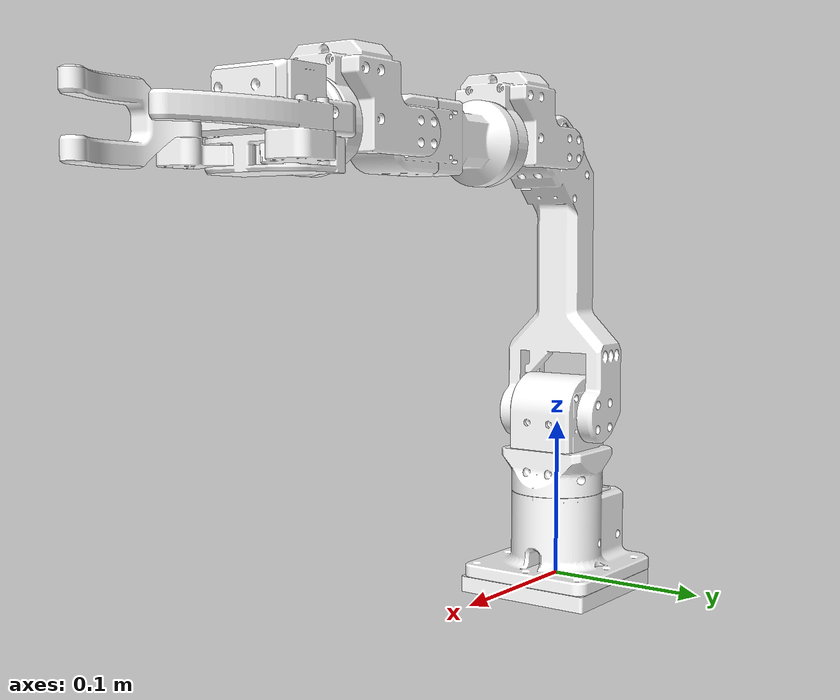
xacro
<?xml version="1.0"?>
<!-- MikataArm 6-axis robot -->
<robot xmlns:xacro="http://www.ros.org/wiki/xacro" name="mikata_arm">
  <!-- Arguments -->
  <xacro:arg name="prefix" default="" />
  <xacro:arg name="use_ros2_control" default="true" />
  <xacro:arg name="use_fake_hardware" default="false" />
  <xacro:arg name="initial_positions_file" default="$(find mikata_arm_description)/config/initial_positions.yaml" />
  <xacro:arg name="usb_port" default="/dev/ttyUSB0" />

  <!-- Include robot model -->
  <xacro:include filename="$(find mikata_arm_description)/urdf/mikata_arm.xacro" />

  <!-- Conditionally include ros2_control description -->
  <xacro:if value="$(arg use_ros2_control)">
    <xacro:include filename="$(find mikata_arm_description)/urdf/mikata_arm.ros2_control.xacro" />
  </xacro:if>

  <!-- Base link -->
  <link name="$(arg prefix)base_link" />

  <!-- Robot arm -->
  <xacro:mikata_arm
      prefix="$(arg prefix)"
      parent="$(arg prefix)base_link">
    <origin xyz="0 0 0" rpy="0 0 0" />
  </xacro:mikata_arm>

  <!-- Conditionally add ros2_control hardware interface -->
  <xacro:if value="$(arg use_ros2_control)">
    <xacro:mikata_arm_ros2_control
      name="mikata_arm"
      prefix="$(arg prefix)"
      use_fake_hardware="$(arg use_fake_hardware)"
      initial_positions_file="$(arg initial_positions_file)"
      usb_port="$(arg usb_port)" />
  </xacro:if>

</robot>

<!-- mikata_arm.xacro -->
<robot xmlns:xacro="http://www.ros.org/wiki/xacro">
  <xacro:macro name="mikata_arm" params="prefix parent *origin">

  <!-- Joint Limits Configuration (in degrees)    -->

  <!-- Degree to Radian conversion -->
  <xacro:property name="deg_to_rad" value="${pi/180.0}" />

  <!-- Joint1: Position limits (degrees) -->
  <xacro:property name="joint1_lower_deg" value="-175" />
  <xacro:property name="joint1_upper_deg" value="175" />

  <!-- Joint2: Position limits (degrees) -->
  <xacro:property name="joint2_lower_deg" value="-145" />
  <xacro:property name="joint2_upper_deg" value="90" />

  <!-- Joint3: Position limits (degrees) -->
  <xacro:property name="joint3_lower_deg" value="-90" />
  <xacro:property name="joint3_upper_deg" value="80" />

  <!-- Joint4: Position limits (degrees) -->
  <xacro:property name="joint4_lower_deg" value="-175" />
  <xacro:property name="joint4_upper_deg" value="175" />

  <!-- Joint5: Position limits (degrees) -->
  <xacro:property name="joint5_lower_deg" value="-100" />
  <xacro:property name="joint5_upper_deg" value="100" />

  <!-- Joint6: Position limits (degrees) -->
  <xacro:property name="joint6_lower_deg" value="-175" />
  <xacro:property name="joint6_upper_deg" value="175" />

  <!-- Gripper joints: Position limits (degrees) -->
  <xacro:property name="gripper_lower_deg" value="-45" />
  <xacro:property name="gripper_upper_deg" value="45" />

  <!-- Common properties for all joints -->
  <xacro:property name="joint_effort" value="1.37" />
  <xacro:property name="joint_velocity" value="7.0" />

  <!-- material color setting -->
  <material name="#ffffff">
    <color rgba="1.000 1.000 1.000 1.0"/>
  </material>

  <joint name="base_link_to_floor_surface" type="fixed">
    <origin xyz="0 0 0" rpy="0.0 0.0 0.0"/>
    <parent link="${parent}"/>
    <child link="floor_surface"/>
  </joint>

  <link name="floor_surface">
    <inertial>
      <origin xyz="1e-06 1.8e-05 -0.005002" rpy="0.0 0.0 0.0"/>
      <mass value="0.000080925039"/>
      <inertia ixx="0.00000013" ixy="-0" ixz="-0" iyy="0.00000013" iyz="0" izz="0.00000016"/>
    </inertial>
    <visual>
      <origin xyz="0 0 0" rpy="0 0 0"/>
      <geometry>
        <mesh filename="package://mikata_arm_description/meshes/floor_surface.dae"/>
      </geometry>
      <material name="#ffffff"/>
    </visual>
  </link>

  <joint name="floor_surface_to_Link1" type="fixed">
    <origin xyz="0.0 0.0 0.0" rpy="0.0 0.0 0.0"/>
    <parent link="floor_surface"/>
    <child link="Link1"/>
  </joint>

  <link name="Link1">
    <inertial>
      <origin xyz="0.0 -0.0 0.021368" rpy="0.0 0.0 0.0"/>
      <mass value="0.000001664356"/>
      <inertia ixx="0" ixy="0" ixz="0" iyy="0" iyz="0" izz="0"/>
    </inertial>
    <visual>
      <origin xyz="0 0 0" rpy="0 0 0"/>
      <geometry>
        <mesh filename="package://mikata_arm_description/meshes/Link1.dae"/>
      </geometry>
      <material name="#ffffff"/>
    </visual>
    <collision>
      <origin xyz="0.0 0.0 0.015" rpy="0.0 0.0 0.0"/>
      <geometry>
        <cylinder radius="0.015" length="0.03"/>
      </geometry>
    </collision>
  </link>

  <joint name="joint1" type="revolute">
    <origin xyz="0.0 0.0 0.03" rpy="0.0 0.0 0.0"/>
    <axis xyz="0 0 1"/>
    <parent link="Link1"/>
    <child link="Link2"/>
    <limit lower="${joint1_lower_deg * deg_to_rad}" upper="${joint1_upper_deg * deg_to_rad}" effort="${joint_effort}" velocity="${joint_velocity}"/>
    <dynamics damping="0.18" friction="0.005"/>
  </joint>

  <gazebo reference="joint1">
    <implicitSpringDamper>true</implicitSpringDamper>
    <springStiffness>100</springStiffness>
    <springReference>0.0</springReference>
  </gazebo>

  <link name="Link2">
    <inertial>
      <origin xyz="0.0 -0.0 0.107368" rpy="0.0 0.0 0.0"/>
      <mass value="0.00000553095"/>
      <inertia ixx="0.00000002" ixy="0" ixz="0" iyy="0.00000002" iyz="0" izz="0"/>
    </inertial>
    <visual>
      <origin xyz="0 0 0" rpy="0 0 0"/>
      <geometry>
        <mesh filename="package://mikata_arm_description/meshes/Link2.dae"/>
      </geometry>
      <material name="#ffffff"/>
    </visual>
    <collision>
      <origin xyz="0.0 0.0 0.0284" rpy="0.0 0.0 0.0"/>
      <geometry>
        <cylinder radius="0.01" length="0.0569"/>
      </geometry>
    </collision>

  </link>

  <joint name="joint2" type="revolute">
    <origin xyz="0.0 -0.0 0.076" rpy="0.0 0.0 0.0"/>
    <axis xyz="0 1 0"/>
    <parent link="Link2"/>
    <child link="Link3"/>
    <limit lower="${joint2_lower_deg * deg_to_rad}" upper="${joint2_upper_deg * deg_to_rad}" effort="${joint_effort}" velocity="${joint_velocity}"/>
    <dynamics damping="0.18" friction="0.005"/>
  </joint>
  <gazebo reference="joint2">
    <implicitSpringDamper>true</implicitSpringDamper>
    <springStiffness>100</springStiffness>
    <springReference>0.0</springReference>
  </gazebo>

  <link name="Link3">
    <inertial>
      <origin xyz="0.0 0.0 0.107368" rpy="0.0 0.0 0.0"/>
      <mass value="0.000008777209"/>
      <inertia ixx="0.00000004" ixy="0" ixz="-0" iyy="0.00000004" iyz="0" izz="0.00000002"/>
    </inertial>
    <visual>
      <origin xyz="0 0 0" rpy="0 0 0"/>
      <geometry>
        <mesh filename="package://mikata_arm_description/meshes/Link3.dae"/>
      </geometry>
      <material name="#ffffff"/>
    </visual>
    <collision>
      <origin xyz="0.0007 0.0 0.096" rpy="0.0 0.0 0.0"/>
      <geometry>
        <cylinder radius="0.006" length="0.15"/>
      </geometry>
    </collision>
  </link>

  <joint name="joint3" type="revolute">
    <origin xyz="0.024 5e-05 0.168" rpy="0.0 0.0 0.0"/>
    <axis xyz="0 1 0"/>
    <parent link="Link3"/>
    <child link="Link4"/>
    <limit lower="${joint3_lower_deg * deg_to_rad}" upper="${joint3_upper_deg * deg_to_rad}" effort="${joint_effort}" velocity="${joint_velocity}"/>
    <dynamics damping="0.18" friction="0.005"/>
  </joint>
  <gazebo reference="joint3">
    <implicitSpringDamper>true</implicitSpringDamper>
    <springStiffness>100</springStiffness>
    <springReference>0.0</springReference>
  </gazebo>

  <link name="Link4">
    <inertial>
      <origin xyz="0.021909 -0.0 -0.0" rpy="0.0 0.0 0.0"/>
      <mass value="0.000002893634"/>
      <inertia ixx="0" ixy="0" ixz="0" iyy="0" iyz="0" izz="0"/>
    </inertial>
    <visual>
      <origin xyz="0 0 0" rpy="0 0 0"/>
      <geometry>
        <mesh filename="package://mikata_arm_description/meshes/Link4.dae"/>
      </geometry>
      <material name="#ffffff"/>
    </visual>
    <collision>
      <origin xyz="0.0264 0.0 0.0" rpy="0.0 1.570796 0.0"/>
      <geometry>
        <cylinder radius="0.01" length="0.037"/>
      </geometry>
    </collision>
  </link>

  <joint name="joint4" type="revolute">
    <origin xyz="0.045 0.0 0.0" rpy="0.0 0.0 0.0"/>
    <axis xyz="1 0 0"/>
    <parent link="Link4"/>
    <child link="Link5"/>
    <limit lower="${joint4_lower_deg * deg_to_rad}" upper="${joint4_upper_deg * deg_to_rad}" effort="${joint_effort}" velocity="${joint_velocity}"/>
    <dynamics damping="0.18" friction="0.005"/>
  </joint>
  <gazebo reference="joint4">
    <implicitSpringDamper>true</implicitSpringDamper>
    <springStiffness>100</springStiffness>
    <springReference>0.0</springReference>
  </gazebo>

  <link name="Link5">
    <inertial>
      <origin xyz="0.068461 -0.0 -0.0" rpy="0.0 0.0 0.0"/>
      <mass value="0.000006380113"/>
      <inertia ixx="0" ixy="0" ixz="0" iyy="0.00000001" iyz="0" izz="0.00000001"/>
    </inertial>
    <visual>
      <origin xyz="0 0 0" rpy="0 0 0"/>
      <geometry>
        <mesh filename="package://mikata_arm_description/meshes/Link5.dae"/>
      </geometry>
      <material name="#ffffff"/>
    </visual>
    <collision>
      <origin xyz="0.04 0.0002 0.0" rpy="0.0 1.570796 0.0"/>
      <geometry>
        <cylinder radius="0.01" length="0.08"/>
      </geometry>
    </collision>
  </link>

  <joint name="joint5" type="revolute">
    <origin xyz="0.107 -1.1e-05 0.0" rpy="0.0 0.0 0.0"/>
    <axis xyz="0 1 0"/>
    <parent link="Link5"/>
    <child link="Link6"/>
    <limit lower="${joint5_lower_deg * deg_to_rad}" upper="${joint5_upper_deg * deg_to_rad}" effort="${joint_effort}" velocity="${joint_velocity}"/>
    <dynamics damping="0.18" friction="0.005"/>
  </joint>
  <gazebo reference="joint5">
    <implicitSpringDamper>true</implicitSpringDamper>
    <springStiffness>100</springStiffness>
    <springReference>0.0</springReference>
  </gazebo>

  <link name="Link6">
    <inertial>
      <origin xyz="0.021922 -0.0 -0.0" rpy="0.0 0.0 0.0"/>
      <mass value="0.000002894338"/>
      <inertia ixx="0" ixy="0" ixz="0" iyy="0" iyz="0" izz="0"/>
    </inertial>
    <visual>
      <origin xyz="0 0 0" rpy="0 0 0"/>
      <geometry>
        <mesh filename="package://mikata_arm_description/meshes/Link6.dae"/>
      </geometry>
      <material name="#ffffff"/>
    </visual>
    <collision>
      <origin xyz="0.03 0.0 0.0" rpy="0.0 1.570796 0.0"/>
      <geometry>
        <cylinder radius="0.01" length="0.03"/>
      </geometry>
    </collision>
  </link>

  <joint name="joint6" type="revolute">
    <origin xyz="0.045 2.1e-05 0.0" rpy="0.0 0.0 0.0"/>
    <axis xyz="1 0 0"/>
    <parent link="Link6"/>
    <child link="gripper_base"/>
    <limit lower="${joint6_lower_deg * deg_to_rad}" upper="${joint6_upper_deg * deg_to_rad}" effort="${joint_effort}" velocity="${joint_velocity}"/>
    <dynamics damping="0.18" friction="0.005"/>
  </joint>
  <gazebo reference="joint6">
    <implicitSpringDamper>true</implicitSpringDamper>
    <springStiffness>100</springStiffness>
    <springReference>0.0</springReference>
  </gazebo>

  <!-- ここからグリッパー -->

  <link name="gripper_base">
    <inertial>
      <origin xyz="0.037354 -0.000864 -0.008034" rpy="0.0 0.0 0.0"/>
      <mass value="0.000008321545"/>
      <inertia ixx="0" ixy="0" ixz="0" iyy="0" iyz="0" izz="0"/>
    </inertial>
    <visual>
      <origin xyz="0 0 0" rpy="0 0 0"/>
      <geometry>
        <mesh filename="package://mikata_arm_description/meshes/Link7.dae"/>
      </geometry>
      <material name="#ffffff"/>
    </visual>
    <collision>
      <origin xyz="0.0275 -0.0012 0.0045" rpy="0.0 0.0 0.0"/>
      <geometry>
        <box size="0.055 0.052 0.017"/>
      </geometry>
    </collision>
  </link>

  <joint name="gripper_sub1" type="revolute">
    <origin xyz="0.045 0.0148 -0.011" rpy="0.0 0.0 0.0"/>
    <axis xyz="0 0 -1"/>
    <parent link="gripper_base"/>
    <child link="gripper_link1"/>
    <limit lower="${gripper_lower_deg * deg_to_rad}" upper="${gripper_upper_deg * deg_to_rad}" effort="${joint_effort}" velocity="${joint_velocity}"/>
    <dynamics damping="0.18" friction="0.005"/>
  </joint>
  <gazebo reference="gripper_sub1">
    <implicitSpringDamper>true</implicitSpringDamper>
    <springStiffness>100</springStiffness>
    <springReference>0.0</springReference>
  </gazebo>

  <link name="gripper_link1">
    <inertial>
      <origin xyz="0.007549 0.007549 -0.0" rpy="0.0 0.0 0.0"/>
      <mass value="0.000001874853"/>
      <inertia ixx="0" ixy="-0" ixz="0" iyy="0" iyz="0" izz="0"/>
    </inertial>
    <visual>
      <origin xyz="0 0 0" rpy="0 0 0"/>
      <geometry>
        <mesh filename="package://mikata_arm_description/meshes/Link8.dae"/>
      </geometry>
      <material name="#ffffff"/>
    </visual>
    <collision>
      <origin xyz="0.018 0.018 0.0001" rpy="-1.572037 0.000962 -0.781086"/>
      <geometry>
        <cylinder radius="0.0035" length="0.025"/>
      </geometry>
    </collision>
  </link>

  <joint name="gripper_sub2" type="revolute">
    <origin xyz="0.045 -0.0172 -0.011" rpy="0.0 0.0 0.0"/>
    <axis xyz="0 0 -1"/>
    <parent link="gripper_base"/>
    <child link="gripper_link2"/>
    <limit lower="${gripper_lower_deg * deg_to_rad}" upper="${gripper_upper_deg * deg_to_rad}" effort="${joint_effort}" velocity="${joint_velocity}"/>
    <dynamics damping="0.18" friction="0.005"/>
    <mimic joint="gripper_sub1" multiplier="-1.0" offset="0"/>
  </joint>
  <gazebo reference="gripper_sub2">
    <implicitSpringDamper>true</implicitSpringDamper>
    <springStiffness>100</springStiffness>
    <springReference>0.0</springReference>
  </gazebo>

  <link name="gripper_link2">
    <inertial>
      <origin xyz="0.007549 -0.007549 -0.0" rpy="0.0 0.0 0.0"/>
      <mass value="0.000001874853"/>
      <inertia ixx="0" ixy="0" ixz="0" iyy="0" iyz="0" izz="0"/>
    </inertial>
    <visual>
      <origin xyz="0 0 0" rpy="0 0 0"/>
      <geometry>
        <mesh filename="package://mikata_arm_description/meshes/Link9.dae"/>
      </geometry>
      <material name="#ffffff"/>
    </visual>
    <collision>
      <origin xyz="0.018 -0.018 0.0" rpy="0.287266 1.569847 2.645491"/>
      <geometry>
        <cylinder radius="0.0035" length="0.025"/>
      </geometry>
    </collision>
  </link>

  </xacro:macro>
</robot>
